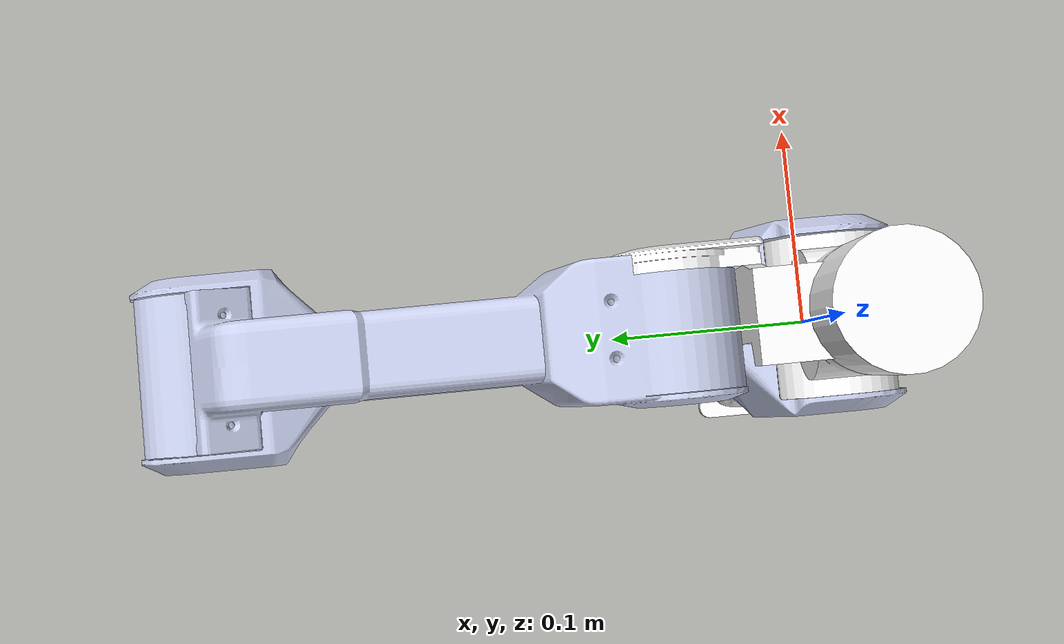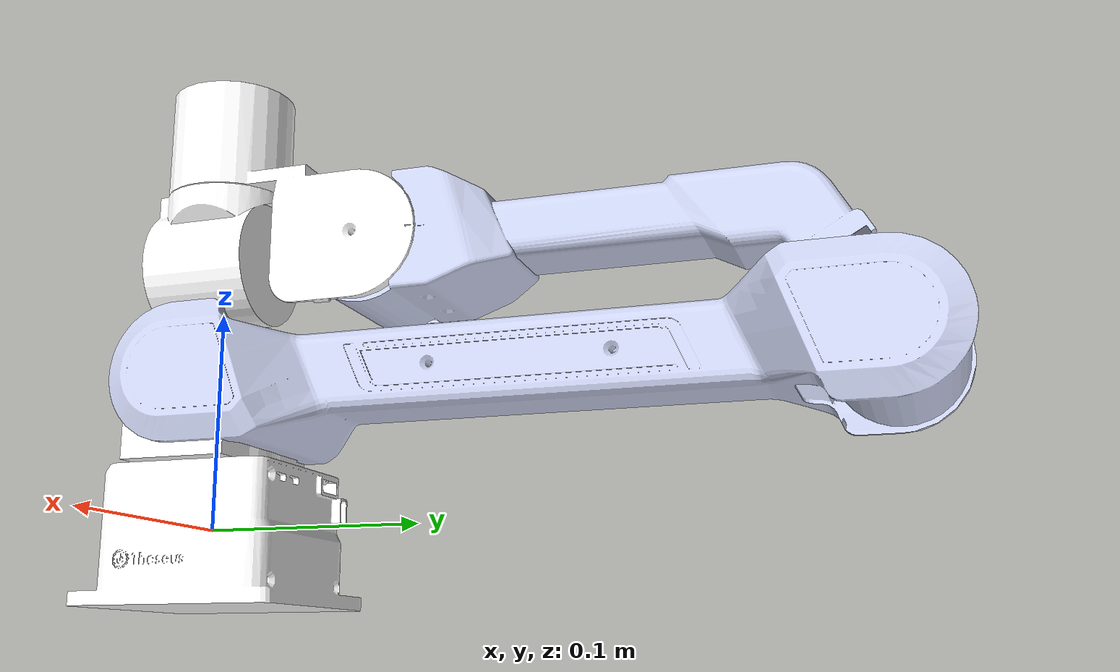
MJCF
<mujoco model="S1_urdf">
  <compiler angle="radian"/>

  <asset>
    <mesh name="base_link" file="base_link.STL"/>
    <mesh name="1_Link" file="1_Link.STL"/>
    <mesh name="2_Link" file="2_Link.STL"/>
    <mesh name="3_Link" file="3_Link.STL"/>
    <mesh name="4_Link" file="4_Link.STL"/>
    <mesh name="5_Link" file="5_Link.STL"/>
    <mesh name="6_Link" file="6_Link.STL"/>
    <mesh name="7_1_Link" file="7_1_Link.STL"/>
    <mesh name="7_2_Link" file="7_2_Link.STL"/>
  </asset>

  <worldbody>
    <geom type="mesh" rgba="1 1 1 1" mesh="base_link"/>
    <body name="1_Link">
      <inertial pos="-5e-06 0 0.0590654" quat="0.5 0.5 0.5 0.5" mass="0.240435" diaginertia="0.000186308 0.000164031 0.000128092"/>
      <joint name="1joint" pos="0 0 0" axis="0 0 1" range="-2.967 2.967" actuatorfrcrange="-9 9"/>
      <geom type="mesh" rgba="1 1 1 1" mesh="1_Link"/>
      <body name="2_Link" pos="0 0 0.06525">
        <inertial pos="0.000517956 0.251879 -7.29157e-05" quat="0.496418 0.50451 -0.503702 0.495301" mass="0.27896" diaginertia="0.00101012 0.000968577 0.00016357"/>
        <joint name="2joint" pos="0 0 0" axis="1 0 0" range="0 3.14" actuatorfrcrange="-9 9"/>
        <geom type="mesh" rgba="0.792157 0.819608 0.933333 1" mesh="2_Link"/>
        <body name="3_Link" pos="0.000495 0.3 0">
          <inertial pos="-0.00362159 -0.190378 0.0563752" quat="0.723905 0.689279 -0.00259707 -0.0291389" mass="0.196496" diaginertia="0.000365387 0.000357218 7.49679e-05"/>
          <joint name="3joint" pos="0 0 0" axis="1 0 0" range="-3.4 0" actuatorfrcrange="-9 9"/>
          <geom type="mesh" rgba="0.796078 0.823529 0.937255 1" mesh="3_Link"/>
          <body name="4_Link" pos="-0.000495 -0.22 0.057">
            <inertial pos="0.00252083 -0.0683945 0.0485252" quat="0.88999 0.422772 -0.02784 -0.168542" mass="0.160912" diaginertia="0.000225826 0.000223253 6.28301e-05"/>
            <joint name="4joint" pos="0 0 0" axis="1 0 0" range="-1.57 1.518" actuatorfrcrange="-3 3"/>
            <geom type="mesh" rgba="1 1 1 1" mesh="4_Link"/>
            <body name="5_Link" pos="0 -0.0807873 0.0591737">
              <inertial pos="-9.47221e-11 -0.000956924 -0.0552063" quat="0.706374 -0.0321127 0.032113 0.706381" mass="0.148471" diaginertia="7.23521e-05 7.08257e-05 6.2135e-05"/>
              <joint name="5joint" pos="0 0 0" axis="0 0 1" range="-1.57 1.57" actuatorfrcrange="-3 3"/>
              <geom type="mesh" rgba="1 1 1 1" mesh="5_Link"/>
            </body>
          </body>
        </body>
      </body>
    </body>
  </worldbody>
    <contact>
    <exclude body1="world" body2="1_Link"/>
  </contact>
</mujoco>
